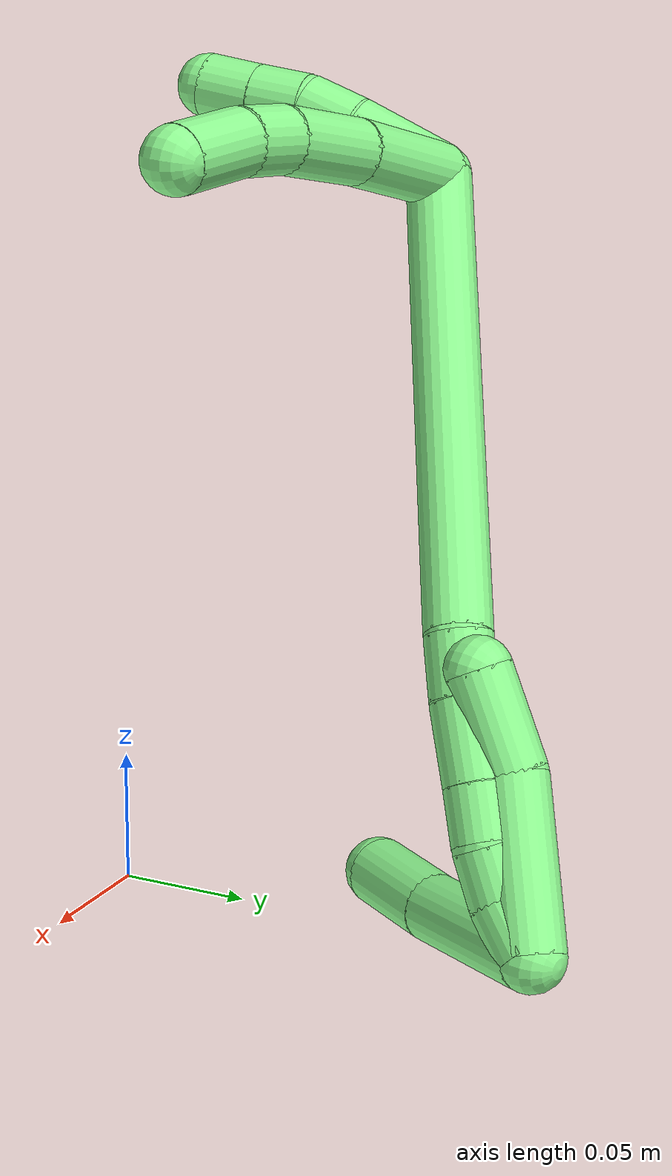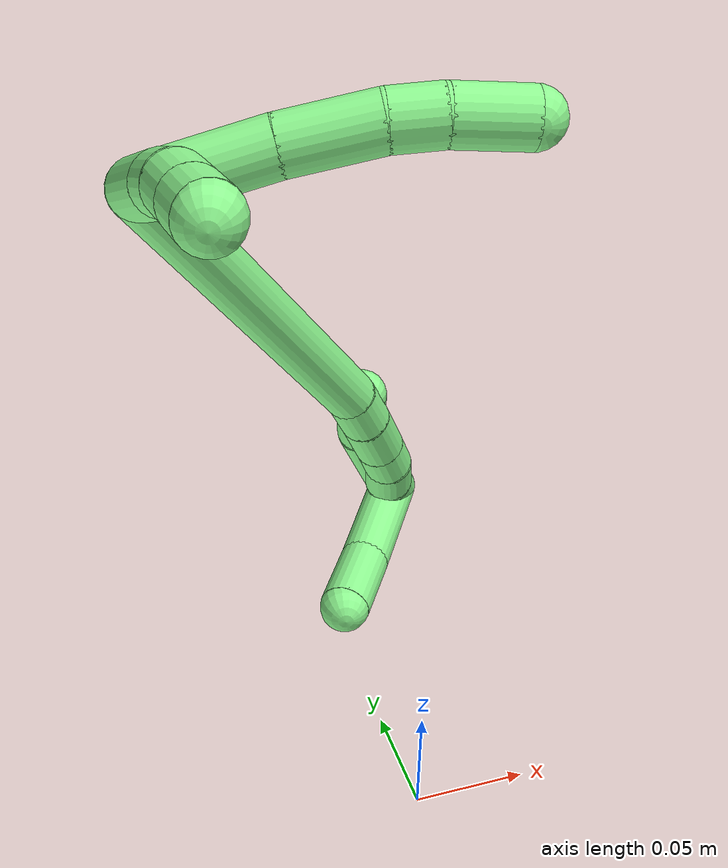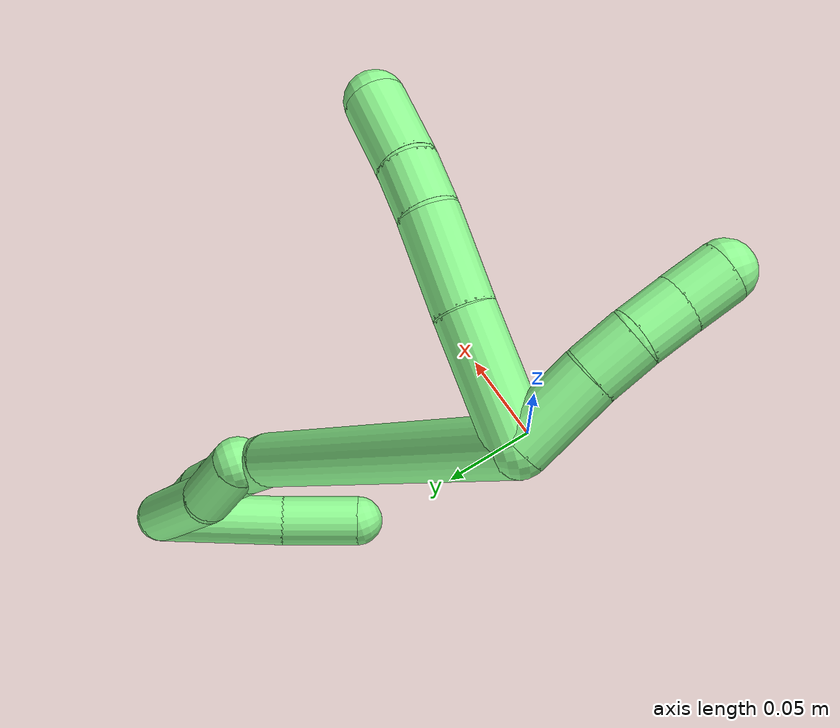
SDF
<sdf version="1.7">
 <world name="default">
  <model name="13">
   <static>0</static>
   <link name="13">
    <collision name="collision-cylinder-e_1_2_8">
     <pose>0.024205 -0.012011 0.000887 1.49704 1.10911 1.04414</pose>
     <geometry><cylinder><radius>0.0125</radius><length>0.054072</length></cylinder></geometry>
     <surface>
      <friction><ode><mu>1.16</mu><mu2>1.16</mu2><slip1>0</slip1><slip2>0</slip2></ode></friction>
      <contact><ode><kp>1e+06</kp><kd>1</kd><max_vel>0</max_vel><min_depth>0.001</min_depth></ode></contact>
     </surface>
    </collision>
    <visual name="visual-cylinder-e_1_2_8">
     <pose>0.024205 -0.012011 0.000887 1.49704 1.10911 1.04414</pose>
     <geometry><cylinder><radius>0.0125</radius><length>0.054072</length></cylinder></geometry>
     <material><ambient>0.564706 0.984314 0.572549 1</ambient></material>
    </visual>
    <collision name="collision-cylinder-e_2_8_9">
     <pose>0.06705 -0.031847 0.001816 1.56554 1.1733 1.16845</pose>
     <geometry><cylinder><radius>0.0125</radius><length>0.040431</length></cylinder></geometry>
     <surface>
      <friction><ode><mu>1.16</mu><mu2>1.16</mu2><slip1>0</slip1><slip2>0</slip2></ode></friction>
      <contact><ode><kp>1e+06</kp><kd>1</kd><max_vel>0</max_vel><min_depth>0.001</min_depth></ode></contact>
     </surface>
    </collision>
    <visual name="visual-cylinder-e_2_8_9">
     <pose>0.06705 -0.031847 0.001816 1.56554 1.1733 1.16845</pose>
     <geometry><cylinder><radius>0.0125</radius><length>0.040431</length></cylinder></geometry>
     <material><ambient>0.564706 0.984314 0.572549 1</ambient></material>
    </visual>
    <collision name="collision-cylinder-e_3_9_10">
     <pose>0.096484 -0.042472 0.002105 1.48241 1.31608 1.23148</pose>
     <geometry><cylinder><radius>0.0125</radius><length>0.022308</length></cylinder></geometry>
     <surface>
      <friction><ode><mu>1.16</mu><mu2>1.16</mu2><slip1>0</slip1><slip2>0</slip2></ode></friction>
      <contact><ode><kp>1e+06</kp><kd>1</kd><max_vel>0</max_vel><min_depth>0.001</min_depth></ode></contact>
     </surface>
    </collision>
    <visual name="visual-cylinder-e_3_9_10">
     <pose>0.096484 -0.042472 0.002105 1.48241 1.31608 1.23148</pose>
     <geometry><cylinder><radius>0.0125</radius><length>0.022308</length></cylinder></geometry>
     <material><ambient>0.564706 0.984314 0.572549 1</ambient></material>
    </visual>
    <collision name="collision-cylinder-e_4_10_6">
     <pose>0.123736 -0.047183 0.003278 1.12045 1.44251 1.00805</pose>
     <geometry><cylinder><radius>0.0125</radius><length>0.033189</length></cylinder></geometry>
     <surface>
      <friction><ode><mu>1.16</mu><mu2>1.16</mu2><slip1>0</slip1><slip2>0</slip2></ode></friction>
      <contact><ode><kp>1e+06</kp><kd>1</kd><max_vel>0</max_vel><min_depth>0.001</min_depth></ode></contact>
     </surface>
    </collision>
    <visual name="visual-cylinder-e_4_10_6">
     <pose>0.123736 -0.047183 0.003278 1.12045 1.44251 1.00805</pose>
     <geometry><cylinder><radius>0.0125</radius><length>0.033189</length></cylinder></geometry>
     <material><ambient>0.564706 0.984314 0.572549 1</ambient></material>
    </visual>
    <collision name="collision-cylinder-e_1_2_11">
     <pose>0.004531 -0.007877 -0.016151 2.68782 0.247015 0.986731</pose>
     <geometry><cylinder><radius>0.0125</radius><length>0.037064</length></cylinder></geometry>
     <surface>
      <friction><ode><mu>1.16</mu><mu2>1.16</mu2><slip1>0</slip1><slip2>0</slip2></ode></friction>
      <contact><ode><kp>1e+06</kp><kd>1</kd><max_vel>0</max_vel><min_depth>0.001</min_depth></ode></contact>
     </surface>
    </collision>
    <visual name="visual-cylinder-e_1_2_11">
     <pose>0.004531 -0.007877 -0.016151 2.68782 0.247015 0.986731</pose>
     <geometry><cylinder><radius>0.0125</radius><length>0.037064</length></cylinder></geometry>
     <material><ambient>0.564706 0.984314 0.572549 1</ambient></material>
    </visual>
    <collision name="collision-cylinder-e_2_11_12">
     <pose>0.011317 -0.019464 -0.042053 2.77809 0.21282 1.05296</pose>
     <geometry><cylinder><radius>0.0125</radius><length>0.021347</length></cylinder></geometry>
     <surface>
      <friction><ode><mu>1.16</mu><mu2>1.16</mu2><slip1>0</slip1><slip2>0</slip2></ode></friction>
      <contact><ode><kp>1e+06</kp><kd>1</kd><max_vel>0</max_vel><min_depth>0.001</min_depth></ode></contact>
     </surface>
    </collision>
    <visual name="visual-cylinder-e_2_11_12">
     <pose>0.011317 -0.019464 -0.042053 2.77809 0.21282 1.05296</pose>
     <geometry><cylinder><radius>0.0125</radius><length>0.021347</length></cylinder></geometry>
     <material><ambient>0.564706 0.984314 0.572549 1</ambient></material>
    </visual>
    <collision name="collision-cylinder-e_3_12_13">
     <pose>0.016409 -0.024563 -0.061626 3.00103 0.278572 2.21089</pose>
     <geometry><cylinder><radius>0.0125</radius><length>0.020636</length></cylinder></geometry>
     <surface>
      <friction><ode><mu>1.16</mu><mu2>1.16</mu2><slip1>0</slip1><slip2>0</slip2></ode></friction>
      <contact><ode><kp>1e+06</kp><kd>1</kd><max_vel>0</max_vel><min_depth>0.001</min_depth></ode></contact>
     </surface>
    </collision>
    <visual name="visual-cylinder-e_3_12_13">
     <pose>0.016409 -0.024563 -0.061626 3.00103 0.278572 2.21089</pose>
     <geometry><cylinder><radius>0.0125</radius><length>0.020636</length></cylinder></geometry>
     <material><ambient>0.564706 0.984314 0.572549 1</ambient></material>
    </visual>
    <collision name="collision-cylinder-e_4_13_5">
     <pose>0.02192 -0.027487 -0.081461 2.98947 0.258067 2.0795</pose>
     <geometry><cylinder><radius>0.0125</radius><length>0.020953</length></cylinder></geometry>
     <surface>
      <friction><ode><mu>1.16</mu><mu2>1.16</mu2><slip1>0</slip1><slip2>0</slip2></ode></friction>
      <contact><ode><kp>1e+06</kp><kd>1</kd><max_vel>0</max_vel><min_depth>0.001</min_depth></ode></contact>
     </surface>
    </collision>
    <visual name="visual-cylinder-e_4_13_5">
     <pose>0.02192 -0.027487 -0.081461 2.98947 0.258067 2.0795</pose>
     <geometry><cylinder><radius>0.0125</radius><length>0.020953</length></cylinder></geometry>
     <material><ambient>0.564706 0.984314 0.572549 1</ambient></material>
    </visual>
    <collision name="collision-cylinder-e_1_2_14">
     <pose>0.054743 0.060383 0.043598 -0.945448 0.633852 -0.332364</pose>
     <geometry><cylinder><radius>0.0125</radius><length>0.184864</length></cylinder></geometry>
     <surface>
      <friction><ode><mu>1.16</mu><mu2>1.16</mu2><slip1>0</slip1><slip2>0</slip2></ode></friction>
      <contact><ode><kp>1e+06</kp><kd>1</kd><max_vel>0</max_vel><min_depth>0.001</min_depth></ode></contact>
     </surface>
    </collision>
    <visual name="visual-cylinder-e_1_2_14">
     <pose>0.054743 0.060383 0.043598 -0.945448 0.633852 -0.332364</pose>
     <geometry><cylinder><radius>0.0125</radius><length>0.184864</length></cylinder></geometry>
     <material><ambient>0.564706 0.984314 0.572549 1</ambient></material>
    </visual>
    <collision name="collision-cylinder-e_2_14_15">
     <pose>0.115215 0.129599 0.092412 -1.03732 0.509274 -0.294978</pose>
     <geometry><cylinder><radius>0.0125</radius><length>0.023499</length></cylinder></geometry>
     <surface>
      <friction><ode><mu>1.16</mu><mu2>1.16</mu2><slip1>0</slip1><slip2>0</slip2></ode></friction>
      <contact><ode><kp>1e+06</kp><kd>1</kd><max_vel>0</max_vel><min_depth>0.001</min_depth></ode></contact>
     </surface>
    </collision>
    <visual name="visual-cylinder-e_2_14_15">
     <pose>0.115215 0.129599 0.092412 -1.03732 0.509274 -0.294978</pose>
     <geometry><cylinder><radius>0.0125</radius><length>0.023499</length></cylinder></geometry>
     <material><ambient>0.564706 0.984314 0.572549 1</ambient></material>
    </visual>
    <collision name="collision-cylinder-e_3_15_16">
     <pose>0.127507 0.149628 0.105046 -0.985655 0.454597 -0.247157</pose>
     <geometry><cylinder><radius>0.0125</radius><length>0.029896</length></cylinder></geometry>
     <surface>
      <friction><ode><mu>1.16</mu><mu2>1.16</mu2><slip1>0</slip1><slip2>0</slip2></ode></friction>
      <contact><ode><kp>1e+06</kp><kd>1</kd><max_vel>0</max_vel><min_depth>0.001</min_depth></ode></contact>
     </surface>
    </collision>
    <visual name="visual-cylinder-e_3_15_16">
     <pose>0.127507 0.149628 0.105046 -0.985655 0.454597 -0.247157</pose>
     <geometry><cylinder><radius>0.0125</radius><length>0.029896</length></cylinder></geometry>
     <material><ambient>0.564706 0.984314 0.572549 1</ambient></material>
    </visual>
    <collision name="collision-cylinder-e_4_16_17">
     <pose>0.138546 0.168765 0.117287 -1.02497 0.448881 -0.25548</pose>
     <geometry><cylinder><radius>0.0125</radius><length>0.020625</length></cylinder></geometry>
     <surface>
      <friction><ode><mu>1.16</mu><mu2>1.16</mu2><slip1>0</slip1><slip2>0</slip2></ode></friction>
      <contact><ode><kp>1e+06</kp><kd>1</kd><max_vel>0</max_vel><min_depth>0.001</min_depth></ode></contact>
     </surface>
    </collision>
    <visual name="visual-cylinder-e_4_16_17">
     <pose>0.138546 0.168765 0.117287 -1.02497 0.448881 -0.25548</pose>
     <geometry><cylinder><radius>0.0125</radius><length>0.020625</length></cylinder></geometry>
     <material><ambient>0.564706 0.984314 0.572549 1</ambient></material>
    </visual>
    <collision name="collision-cylinder-e_5_17_18">
     <pose>0.14538 0.185126 0.127101 -1.03577 0.236555 -0.135204</pose>
     <geometry><cylinder><radius>0.0125</radius><length>0.020137</length></cylinder></geometry>
     <surface>
      <friction><ode><mu>1.16</mu><mu2>1.16</mu2><slip1>0</slip1><slip2>0</slip2></ode></friction>
      <contact><ode><kp>1e+06</kp><kd>1</kd><max_vel>0</max_vel><min_depth>0.001</min_depth></ode></contact>
     </surface>
    </collision>
    <visual name="visual-cylinder-e_5_17_18">
     <pose>0.14538 0.185126 0.127101 -1.03577 0.236555 -0.135204</pose>
     <geometry><cylinder><radius>0.0125</radius><length>0.020137</length></cylinder></geometry>
     <material><ambient>0.564706 0.984314 0.572549 1</ambient></material>
    </visual>
    <collision name="collision-cylinder-e_6_18_1">
     <pose>0.150983 0.199833 0.139836 -0.681938 0.314321 -0.112339</pose>
     <geometry><cylinder><radius>0.0125</radius><length>0.020979</length></cylinder></geometry>
     <surface>
      <friction><ode><mu>1.16</mu><mu2>1.16</mu2><slip1>0</slip1><slip2>0</slip2></ode></friction>
      <contact><ode><kp>1e+06</kp><kd>1</kd><max_vel>0</max_vel><min_depth>0.001</min_depth></ode></contact>
     </surface>
    </collision>
    <visual name="visual-cylinder-e_6_18_1">
     <pose>0.150983 0.199833 0.139836 -0.681938 0.314321 -0.112339</pose>
     <geometry><cylinder><radius>0.0125</radius><length>0.020979</length></cylinder></geometry>
     <material><ambient>0.564706 0.984314 0.572549 1</ambient></material>
    </visual>
    <collision name="collision-cylinder-e_1_1_19">
     <pose>0.145085 0.212281 0.118837 -2.93049 -0.301493 1.92352</pose>
     <geometry><cylinder><radius>0.0125</radius><length>0.061569</length></cylinder></geometry>
     <surface>
      <friction><ode><mu>1.16</mu><mu2>1.16</mu2><slip1>0</slip1><slip2>0</slip2></ode></friction>
      <contact><ode><kp>1e+06</kp><kd>1</kd><max_vel>0</max_vel><min_depth>0.001</min_depth></ode></contact>
     </surface>
    </collision>
    <visual name="visual-cylinder-e_1_1_19">
     <pose>0.145085 0.212281 0.118837 -2.93049 -0.301493 1.92352</pose>
     <geometry><cylinder><radius>0.0125</radius><length>0.061569</length></cylinder></geometry>
     <material><ambient>0.564706 0.984314 0.572549 1</ambient></material>
    </visual>
    <collision name="collision-cylinder-e_2_19_4">
     <pose>0.129923 0.220581 0.071971 -3.02398 -0.318658 2.43923</pose>
     <geometry><cylinder><radius>0.0125</radius><length>0.038431</length></cylinder></geometry>
     <surface>
      <friction><ode><mu>1.16</mu><mu2>1.16</mu2><slip1>0</slip1><slip2>0</slip2></ode></friction>
      <contact><ode><kp>1e+06</kp><kd>1</kd><max_vel>0</max_vel><min_depth>0.001</min_depth></ode></contact>
     </surface>
    </collision>
    <visual name="visual-cylinder-e_2_19_4">
     <pose>0.129923 0.220581 0.071971 -3.02398 -0.318658 2.43923</pose>
     <geometry><cylinder><radius>0.0125</radius><length>0.038431</length></cylinder></geometry>
     <material><ambient>0.564706 0.984314 0.572549 1</ambient></material>
    </visual>
    <collision name="collision-cylinder-e_1_1_20">
     <pose>0.139516 0.182128 0.13417 2.08046 -0.491397 -0.807858</pose>
     <geometry><cylinder><radius>0.0125</radius><length>0.062349</length></cylinder></geometry>
     <surface>
      <friction><ode><mu>1.16</mu><mu2>1.16</mu2><slip1>0</slip1><slip2>0</slip2></ode></friction>
      <contact><ode><kp>1e+06</kp><kd>1</kd><max_vel>0</max_vel><min_depth>0.001</min_depth></ode></contact>
     </surface>
    </collision>
    <visual name="visual-cylinder-e_1_1_20">
     <pose>0.139516 0.182128 0.13417 2.08046 -0.491397 -0.807858</pose>
     <geometry><cylinder><radius>0.0125</radius><length>0.062349</length></cylinder></geometry>
     <material><ambient>0.564706 0.984314 0.572549 1</ambient></material>
    </visual>
    <collision name="collision-cylinder-e_2_20_3">
     <pose>0.121035 0.142426 0.111097 2.12226 -0.201685 -0.358197</pose>
     <geometry><cylinder><radius>0.0125</radius><length>0.037651</length></cylinder></geometry>
     <surface>
      <friction><ode><mu>1.16</mu><mu2>1.16</mu2><slip1>0</slip1><slip2>0</slip2></ode></friction>
      <contact><ode><kp>1e+06</kp><kd>1</kd><max_vel>0</max_vel><min_depth>0.001</min_depth></ode></contact>
     </surface>
    </collision>
    <visual name="visual-cylinder-e_2_20_3">
     <pose>0.121035 0.142426 0.111097 2.12226 -0.201685 -0.358197</pose>
     <geometry><cylinder><radius>0.0125</radius><length>0.037651</length></cylinder></geometry>
     <material><ambient>0.564706 0.984314 0.572549 1</ambient></material>
    </visual>
    <collision name="collision-sphere-3">
     <pose>0.117264 0.126716 0.101434 0 -0 0</pose>
     <geometry><sphere><radius>0.0125</radius></sphere></geometry>
     <surface>
      <friction><ode><mu>1.16</mu><mu2>1.16</mu2><slip1>0</slip1><slip2>0</slip2></ode></friction>
      <contact><ode><kp>1e+06</kp><kd>1</kd><max_vel>0</max_vel><min_depth>0.001</min_depth></ode></contact>
     </surface>
    </collision>
    <visual name="visual-sphere-3">
     <pose>0.117264 0.126716 0.101434 0 -0 0</pose>
     <geometry><sphere><radius>0.0125</radius></sphere></geometry>
     <material><ambient>0.564706 0.984314 0.572549 1</ambient></material>
    </visual>
    <collision name="collision-sphere-20">
     <pose>0.124806 0.158136 0.120761 0 -0 0</pose>
     <geometry><sphere><radius>0.0125</radius></sphere></geometry>
     <surface>
      <friction><ode><mu>1.16</mu><mu2>1.16</mu2><slip1>0</slip1><slip2>0</slip2></ode></friction>
      <contact><ode><kp>1e+06</kp><kd>1</kd><max_vel>0</max_vel><min_depth>0.001</min_depth></ode></contact>
     </surface>
    </collision>
    <visual name="visual-sphere-20">
     <pose>0.124806 0.158136 0.120761 0 -0 0</pose>
     <geometry><sphere><radius>0.0125</radius></sphere></geometry>
     <material><ambient>0.564706 0.984314 0.572549 1</ambient></material>
    </visual>
    <collision name="collision-sphere-4">
     <pose>0.123903 0.222723 0.053849 0 -0 0</pose>
     <geometry><sphere><radius>0.0125</radius></sphere></geometry>
     <surface>
      <friction><ode><mu>1.16</mu><mu2>1.16</mu2><slip1>0</slip1><slip2>0</slip2></ode></friction>
      <contact><ode><kp>1e+06</kp><kd>1</kd><max_vel>0</max_vel><min_depth>0.001</min_depth></ode></contact>
     </surface>
    </collision>
    <visual name="visual-sphere-4">
     <pose>0.123903 0.222723 0.053849 0 -0 0</pose>
     <geometry><sphere><radius>0.0125</radius></sphere></geometry>
     <material><ambient>0.564706 0.984314 0.572549 1</ambient></material>
    </visual>
    <collision name="collision-sphere-11">
     <pose>0.009062 -0.015754 -0.032302 0 -0 0</pose>
     <geometry><sphere><radius>0.0125</radius></sphere></geometry>
     <surface>
      <friction><ode><mu>1.16</mu><mu2>1.16</mu2><slip1>0</slip1><slip2>0</slip2></ode></friction>
      <contact><ode><kp>1e+06</kp><kd>1</kd><max_vel>0</max_vel><min_depth>0.001</min_depth></ode></contact>
     </surface>
    </collision>
    <visual name="visual-sphere-11">
     <pose>0.009062 -0.015754 -0.032302 0 -0 0</pose>
     <geometry><sphere><radius>0.0125</radius></sphere></geometry>
     <material><ambient>0.564706 0.984314 0.572549 1</ambient></material>
    </visual>
    <collision name="collision-sphere-6">
     <pose>0.140194 -0.049094 0.004202 0 -0 0</pose>
     <geometry><sphere><radius>0.0125</radius></sphere></geometry>
     <surface>
      <friction><ode><mu>1.16</mu><mu2>1.16</mu2><slip1>0</slip1><slip2>0</slip2></ode></friction>
      <contact><ode><kp>1e+06</kp><kd>1</kd><max_vel>0</max_vel><min_depth>0.001</min_depth></ode></contact>
     </surface>
    </collision>
    <visual name="visual-sphere-6">
     <pose>0.140194 -0.049094 0.004202 0 -0 0</pose>
     <geometry><sphere><radius>0.0125</radius></sphere></geometry>
     <material><ambient>0.564706 0.984314 0.572549 1</ambient></material>
    </visual>
    <collision name="collision-sphere-10">
     <pose>0.107278 -0.045271 0.002353 0 -0 0</pose>
     <geometry><sphere><radius>0.0125</radius></sphere></geometry>
     <surface>
      <friction><ode><mu>1.16</mu><mu2>1.16</mu2><slip1>0</slip1><slip2>0</slip2></ode></friction>
      <contact><ode><kp>1e+06</kp><kd>1</kd><max_vel>0</max_vel><min_depth>0.001</min_depth></ode></contact>
     </surface>
    </collision>
    <visual name="visual-sphere-10">
     <pose>0.107278 -0.045271 0.002353 0 -0 0</pose>
     <geometry><sphere><radius>0.0125</radius></sphere></geometry>
     <material><ambient>0.564706 0.984314 0.572549 1</ambient></material>
    </visual>
    <collision name="collision-sphere-9">
     <pose>0.085689 -0.039672 0.001857 0 -0 0</pose>
     <geometry><sphere><radius>0.0125</radius></sphere></geometry>
     <surface>
      <friction><ode><mu>1.16</mu><mu2>1.16</mu2><slip1>0</slip1><slip2>0</slip2></ode></friction>
      <contact><ode><kp>1e+06</kp><kd>1</kd><max_vel>0</max_vel><min_depth>0.001</min_depth></ode></contact>
     </surface>
    </collision>
    <visual name="visual-sphere-9">
     <pose>0.085689 -0.039672 0.001857 0 -0 0</pose>
     <geometry><sphere><radius>0.0125</radius></sphere></geometry>
     <material><ambient>0.564706 0.984314 0.572549 1</ambient></material>
    </visual>
    <collision name="collision-sphere-2">
     <geometry><sphere><radius>0.0125</radius></sphere></geometry>
     <surface>
      <friction><ode><mu>1.16</mu><mu2>1.16</mu2><slip1>0</slip1><slip2>0</slip2></ode></friction>
      <contact><ode><kp>1e+06</kp><kd>1</kd><max_vel>0</max_vel><min_depth>0.001</min_depth></ode></contact>
     </surface>
    </collision>
    <visual name="visual-sphere-2">
     <geometry><sphere><radius>0.0125</radius></sphere></geometry>
     <material><ambient>0.564706 0.984314 0.572549 1</ambient></material>
    </visual>
    <collision name="collision-sphere-19">
     <pose>0.135943 0.21844 0.090094 0 -0 0</pose>
     <geometry><sphere><radius>0.0125</radius></sphere></geometry>
     <surface>
      <friction><ode><mu>1.16</mu><mu2>1.16</mu2><slip1>0</slip1><slip2>0</slip2></ode></friction>
      <contact><ode><kp>1e+06</kp><kd>1</kd><max_vel>0</max_vel><min_depth>0.001</min_depth></ode></contact>
     </surface>
    </collision>
    <visual name="visual-sphere-19">
     <pose>0.135943 0.21844 0.090094 0 -0 0</pose>
     <geometry><sphere><radius>0.0125</radius></sphere></geometry>
     <material><ambient>0.564706 0.984314 0.572549 1</ambient></material>
    </visual>
    <collision name="collision-sphere-8">
     <pose>0.048411 -0.024021 0.001775 0 -0 0</pose>
     <geometry><sphere><radius>0.0125</radius></sphere></geometry>
     <surface>
      <friction><ode><mu>1.16</mu><mu2>1.16</mu2><slip1>0</slip1><slip2>0</slip2></ode></friction>
      <contact><ode><kp>1e+06</kp><kd>1</kd><max_vel>0</max_vel><min_depth>0.001</min_depth></ode></contact>
     </surface>
    </collision>
    <visual name="visual-sphere-8">
     <pose>0.048411 -0.024021 0.001775 0 -0 0</pose>
     <geometry><sphere><radius>0.0125</radius></sphere></geometry>
     <material><ambient>0.564706 0.984314 0.572549 1</ambient></material>
    </visual>
    <collision name="collision-sphere-12">
     <pose>0.013571 -0.023173 -0.051804 0 -0 0</pose>
     <geometry><sphere><radius>0.0125</radius></sphere></geometry>
     <surface>
      <friction><ode><mu>1.16</mu><mu2>1.16</mu2><slip1>0</slip1><slip2>0</slip2></ode></friction>
      <contact><ode><kp>1e+06</kp><kd>1</kd><max_vel>0</max_vel><min_depth>0.001</min_depth></ode></contact>
     </surface>
    </collision>
    <visual name="visual-sphere-12">
     <pose>0.013571 -0.023173 -0.051804 0 -0 0</pose>
     <geometry><sphere><radius>0.0125</radius></sphere></geometry>
     <material><ambient>0.564706 0.984314 0.572549 1</ambient></material>
    </visual>
    <collision name="collision-sphere-13">
     <pose>0.019246 -0.025952 -0.071448 0 -0 0</pose>
     <geometry><sphere><radius>0.0125</radius></sphere></geometry>
     <surface>
      <friction><ode><mu>1.16</mu><mu2>1.16</mu2><slip1>0</slip1><slip2>0</slip2></ode></friction>
      <contact><ode><kp>1e+06</kp><kd>1</kd><max_vel>0</max_vel><min_depth>0.001</min_depth></ode></contact>
     </surface>
    </collision>
    <visual name="visual-sphere-13">
     <pose>0.019246 -0.025952 -0.071448 0 -0 0</pose>
     <geometry><sphere><radius>0.0125</radius></sphere></geometry>
     <material><ambient>0.564706 0.984314 0.572549 1</ambient></material>
    </visual>
    <collision name="collision-sphere-5">
     <pose>0.024593 -0.029023 -0.091474 0 -0 0</pose>
     <geometry><sphere><radius>0.0125</radius></sphere></geometry>
     <surface>
      <friction><ode><mu>1.16</mu><mu2>1.16</mu2><slip1>0</slip1><slip2>0</slip2></ode></friction>
      <contact><ode><kp>1e+06</kp><kd>1</kd><max_vel>0</max_vel><min_depth>0.001</min_depth></ode></contact>
     </surface>
    </collision>
    <visual name="visual-sphere-5">
     <pose>0.024593 -0.029023 -0.091474 0 -0 0</pose>
     <geometry><sphere><radius>0.0125</radius></sphere></geometry>
     <material><ambient>0.564706 0.984314 0.572549 1</ambient></material>
    </visual>
    <collision name="collision-sphere-14">
     <pose>0.109486 0.120767 0.087195 0 -0 0</pose>
     <geometry><sphere><radius>0.0125</radius></sphere></geometry>
     <surface>
      <friction><ode><mu>1.16</mu><mu2>1.16</mu2><slip1>0</slip1><slip2>0</slip2></ode></friction>
      <contact><ode><kp>1e+06</kp><kd>1</kd><max_vel>0</max_vel><min_depth>0.001</min_depth></ode></contact>
     </surface>
    </collision>
    <visual name="visual-sphere-14">
     <pose>0.109486 0.120767 0.087195 0 -0 0</pose>
     <geometry><sphere><radius>0.0125</radius></sphere></geometry>
     <material><ambient>0.564706 0.984314 0.572549 1</ambient></material>
    </visual>
    <collision name="collision-sphere-15">
     <pose>0.120943 0.138432 0.097628 0 -0 0</pose>
     <geometry><sphere><radius>0.0125</radius></sphere></geometry>
     <surface>
      <friction><ode><mu>1.16</mu><mu2>1.16</mu2><slip1>0</slip1><slip2>0</slip2></ode></friction>
      <contact><ode><kp>1e+06</kp><kd>1</kd><max_vel>0</max_vel><min_depth>0.001</min_depth></ode></contact>
     </surface>
    </collision>
    <visual name="visual-sphere-15">
     <pose>0.120943 0.138432 0.097628 0 -0 0</pose>
     <geometry><sphere><radius>0.0125</radius></sphere></geometry>
     <material><ambient>0.564706 0.984314 0.572549 1</ambient></material>
    </visual>
    <collision name="collision-sphere-16">
     <pose>0.134071 0.160824 0.112464 0 -0 0</pose>
     <geometry><sphere><radius>0.0125</radius></sphere></geometry>
     <surface>
      <friction><ode><mu>1.16</mu><mu2>1.16</mu2><slip1>0</slip1><slip2>0</slip2></ode></friction>
      <contact><ode><kp>1e+06</kp><kd>1</kd><max_vel>0</max_vel><min_depth>0.001</min_depth></ode></contact>
     </surface>
    </collision>
    <visual name="visual-sphere-16">
     <pose>0.134071 0.160824 0.112464 0 -0 0</pose>
     <geometry><sphere><radius>0.0125</radius></sphere></geometry>
     <material><ambient>0.564706 0.984314 0.572549 1</ambient></material>
    </visual>
    <collision name="collision-sphere-17">
     <pose>0.143021 0.176705 0.12211 0 -0 0</pose>
     <geometry><sphere><radius>0.0125</radius></sphere></geometry>
     <surface>
      <friction><ode><mu>1.16</mu><mu2>1.16</mu2><slip1>0</slip1><slip2>0</slip2></ode></friction>
      <contact><ode><kp>1e+06</kp><kd>1</kd><max_vel>0</max_vel><min_depth>0.001</min_depth></ode></contact>
     </surface>
    </collision>
    <visual name="visual-sphere-17">
     <pose>0.143021 0.176705 0.12211 0 -0 0</pose>
     <geometry><sphere><radius>0.0125</radius></sphere></geometry>
     <material><ambient>0.564706 0.984314 0.572549 1</ambient></material>
    </visual>
    <collision name="collision-sphere-18">
     <pose>0.14774 0.193546 0.132091 0 -0 0</pose>
     <geometry><sphere><radius>0.0125</radius></sphere></geometry>
     <surface>
      <friction><ode><mu>1.16</mu><mu2>1.16</mu2><slip1>0</slip1><slip2>0</slip2></ode></friction>
      <contact><ode><kp>1e+06</kp><kd>1</kd><max_vel>0</max_vel><min_depth>0.001</min_depth></ode></contact>
     </surface>
    </collision>
    <visual name="visual-sphere-18">
     <pose>0.14774 0.193546 0.132091 0 -0 0</pose>
     <geometry><sphere><radius>0.0125</radius></sphere></geometry>
     <material><ambient>0.564706 0.984314 0.572549 1</ambient></material>
    </visual>
    <collision name="collision-sphere-1">
     <pose>0.154226 0.206121 0.14758 0 -0 0</pose>
     <geometry><sphere><radius>0.0125</radius></sphere></geometry>
     <surface>
      <friction><ode><mu>1.16</mu><mu2>1.16</mu2><slip1>0</slip1><slip2>0</slip2></ode></friction>
      <contact><ode><kp>1e+06</kp><kd>1</kd><max_vel>0</max_vel><min_depth>0.001</min_depth></ode></contact>
     </surface>
    </collision>
    <visual name="visual-sphere-1">
     <pose>0.154226 0.206121 0.14758 0 -0 0</pose>
     <geometry><sphere><radius>0.0125</radius></sphere></geometry>
     <material><ambient>0.564706 0.984314 0.572549 1</ambient></material>
    </visual>
    <inertial>
     <pose>0.08568 0.082809 0.052956 0 -0 0</pose>
     <mass>0.75</mass>
     <inertia>
      <ixx>0.000332</ixx>
      <ixy>0</ixy>
      <ixz>0</ixz>
      <iyy>0.000306</iyy>
      <iyz>0</iyz>
      <izz>-0.00066</izz>
     </inertia>
    </inertial>
   </link>
   <pose>-0.088503 0.088461 0.267312 -1.62702 0.183411 -0.254698</pose>
  </model>
 </world>
</sdf>
